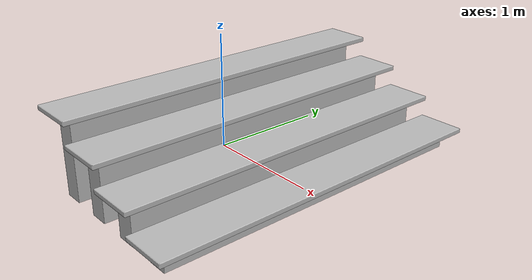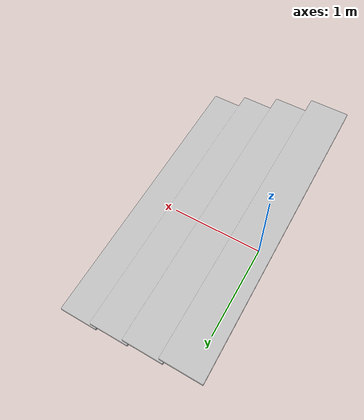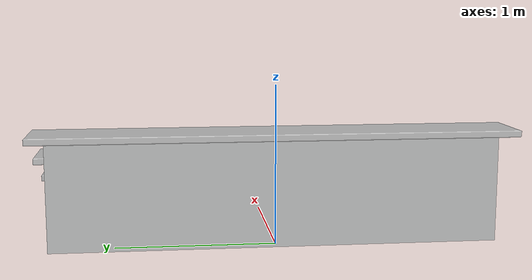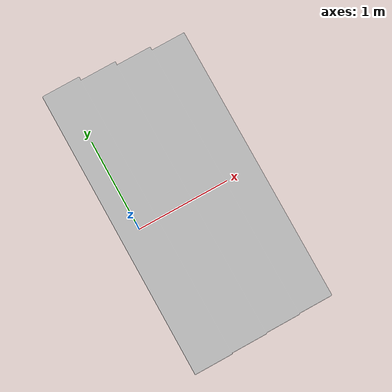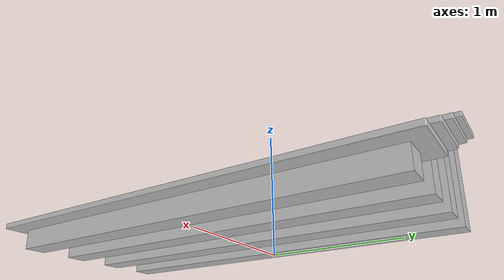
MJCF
<mujoco>
  <compiler angle="radian" assetdir="assets"/>
  <option>
    <flag/>
  </option>
  <statistic/>
  <asset>
    <texture type="2d" colorspace="sRGB" name="t_counter_a01_alb" file="t_counter_a01_alb.png"/>
    <texture type="2d" colorspace="linear" name="t_counter_a01_nor" file="t_counter_a01_nor.png"/>
    <texture type="2d" colorspace="linear" name="t_counter_a01_orm" file="t_counter_a01_orm.png"/>
    <texture type="2d" colorspace="linear" name="noise_normal" file="noise_normal.png"/>
    <material name="m_wood_counter_a01" rgba="0.735357 0.735357 0.735357 1.0" reflectance="0.5" roughness="1.0" metallic="1.0">
      <layer texture="t_counter_a01_alb" role="rgb"/>
      <layer texture="t_counter_a01_nor" role="normal"/>
      <layer texture="t_counter_a01_orm" role="orm"/>
    </material>
    <material name="aluminum_rough" rgba="0.7324986 0.7350006 0.735357 1.0" reflectance="0.5" roughness="0.54" metallic="1.0" texuniform="true" texrepeat="12.0 12.0">
      <layer texture="noise_normal" role="normal"/>
    </material>
    <mesh name="stairs_surface" file="stairs_surface.obj"/>
    <mesh name="stairs_column" file="stairs_column.obj"/>
  </asset>
  <worldbody>
    <geom name="stairs_surface" pos="4e-07 -0.0 0.7000002" quat="1.0 0.0 0.0 0.0" type="mesh" mesh="stairs_surface" material="m_wood_counter_a01" group="2"/>
    <geom name="stairs_column" pos="-2e-07 0.0 0.3400001" quat="1.0 0.0 0.0 0.0" type="mesh" mesh="stairs_column" material="aluminum_rough" group="2"/>
  </worldbody>
</mujoco>
